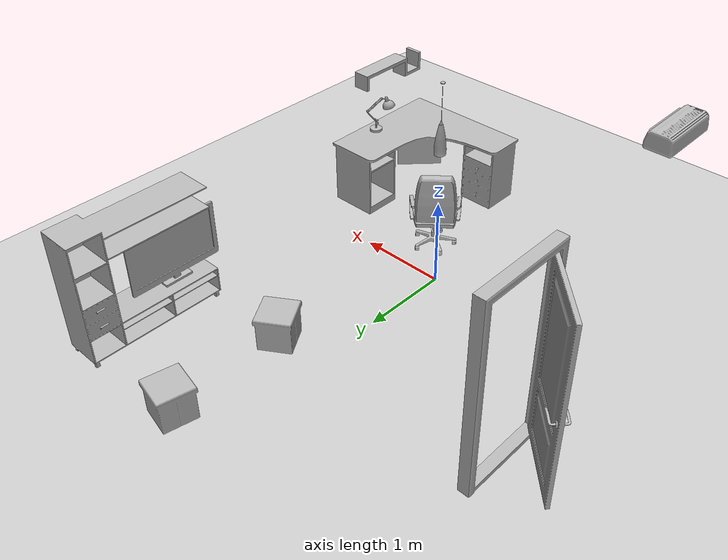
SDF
<sdf version="1.4">
 <world name="default">
  <light name="sun" type="directional">
   <pose>0 0 10 0 -0 0</pose>
   <diffuse>0.8 0.8 0.8 1</diffuse>
   <specular>0.2 0.2 0.2 1</specular>
   <attenuation>
    <range>1000</range>
    <constant>0.9</constant>
    <linear>0.01</linear>
    <quadratic>0.001</quadratic>
   </attenuation>
   <direction>-0.5 0.1 -0.9</direction>
  </light>
  <model name="ground_plane">
   <static>1</static>
   <link name="link">
    <collision name="collision">
     <geometry><plane><normal>0 0 1</normal><size>100 100</size></plane></geometry>
     <surface><friction><ode><mu>100</mu><mu2>50</mu2></ode></friction></surface>
    </collision>
    <visual name="visual">
     <cast_shadows>0</cast_shadows>
     <geometry><plane><normal>0 0 1</normal><size>100 100</size></plane></geometry>
     <material>
      <script><uri>file://media/materials/scripts/gazebo.material</uri><name>Gazebo/Grey</name></script>
     </material>
    </visual>
    <velocity_decay><linear>0</linear><angular>0</angular></velocity_decay>
   </link>
  </model>
  <physics type="ode">
   <max_step_size>0.001</max_step_size>
   <real_time_factor>1</real_time_factor>
   <real_time_update_rate>1000</real_time_update_rate>
   <gravity>0 0 -9.8</gravity>
  </physics>
  <scene><ambient>0.4 0.4 0.4 1</ambient><background>0.7 0.7 0.7 1</background><shadows>1</shadows></scene>
  <spherical_coordinates>
   <surface_model>EARTH_WGS84</surface_model>
   <latitude_deg>0</latitude_deg>
   <longitude_deg>0</longitude_deg>
   <elevation>0</elevation>
   <heading_deg>0</heading_deg>
  </spherical_coordinates>
  <model name="294_0">
   <pose>1.1576 -1.15043 0.01 0 -0 1.5708</pose>
   <static>1</static>
   <link name="link">
    <collision name="collision"><geometry><box><size>1.57989 1.57963 2</size></box></geometry></collision>
    <visual name="visual"><geometry><mesh><uri>model://294/294.dae</uri></mesh></geometry></visual>
    <velocity_decay><linear>0</linear><angular>0</angular></velocity_decay>
   </link>
  </model>
  <model name="106_0">
   <pose>0.453878 -0.512083 0.01 0 -0 2.26683</pose>
   <static>1</static>
   <link name="link">
    <collision name="collision"><geometry><box><size>0.550393 0.596196 2</size></box></geometry></collision>
    <visual name="visual"><geometry><mesh><uri>model://106/106.dae</uri></mesh></geometry></visual>
    <velocity_decay><linear>0</linear><angular>0</angular></velocity_decay>
   </link>
  </model>
  <model name="770_0">
   <pose>-2.046 1.52299 0 0 -0 0</pose>
   <static>1</static>
   <link name="link">
    <collision name="collision"><geometry><box><size>0.73 1.06045 2</size></box></geometry></collision>
    <visual name="visual"><geometry><mesh><uri>model://770/770.dae</uri></mesh></geometry></visual>
    <velocity_decay><linear>0</linear><angular>0</angular></velocity_decay>
   </link>
  </model>
  <model name="493_0">
   <pose>1.83017 -1.21141 1.38 0 -0 3.14159</pose>
   <static>1</static>
   <link name="link">
    <collision name="collision"><geometry><box><size>0.2 0.94 2</size></box></geometry></collision>
    <visual name="visual"><geometry><mesh><uri>model://493/493.dae</uri></mesh></geometry></visual>
    <velocity_decay><linear>0</linear><angular>0</angular></velocity_decay>
   </link>
  </model>
  <model name="570_0">
   <pose>1.7068 2.57645 0.01 0 0 -3.14159</pose>
   <static>1</static>
   <link name="link">
    <collision name="collision"><geometry><box><size>0.439998 1.56 2</size></box></geometry></collision>
    <visual name="visual"><geometry><mesh><uri>model://570/570.dae</uri></mesh></geometry></visual>
    <velocity_decay><linear>0</linear><angular>0</angular></velocity_decay>
   </link>
  </model>
  <model name="113_0">
   <pose>1.68339 2.19015 0.380728 0 0 -3.14159</pose>
   <static>1</static>
   <link name="link">
    <collision name="collision"><geometry><box><size>0.1 1.07995 2</size></box></geometry></collision>
    <visual name="visual"><geometry><mesh><uri>model://113/113.dae</uri></mesh></geometry></visual>
    <velocity_decay><linear>0</linear><angular>0</angular></velocity_decay>
   </link>
  </model>
  <model name="547_0">
   <pose>0.515082 1.84233 0.01 0 -0 0.560973</pose>
   <static>1</static>
   <link name="link">
    <collision name="collision"><geometry><box><size>0.4 0.4 2</size></box></geometry></collision>
    <visual name="visual"><geometry><mesh><uri>model://547/547.dae</uri></mesh></geometry></visual>
    <velocity_decay><linear>0</linear><angular>0</angular></velocity_decay>
   </link>
  </model>
  <model name="547_1">
   <pose>0.48415 3.18768 0.01 0 0 -0.207994</pose>
   <static>1</static>
   <link name="link">
    <collision name="collision"><geometry><box><size>0.4 0.4 2</size></box></geometry></collision>
    <visual name="visual"><geometry><mesh><uri>model://547/547.dae</uri></mesh></geometry></visual>
    <velocity_decay><linear>0</linear><angular>0</angular></velocity_decay>
   </link>
  </model>
  <model name="630_0">
   <pose>-0.306 0.396588 1.91 0 -0 0</pose>
   <static>1</static>
   <link name="link">
    <collision name="collision"><geometry><box><size>0.119556 0.119556 2</size></box></geometry></collision>
    <visual name="visual"><geometry><mesh><uri>model://630/630.dae</uri></mesh></geometry></visual>
    <velocity_decay><linear>0</linear><angular>0</angular></velocity_decay>
   </link>
  </model>
  <model name="419_0">
   <pose>1.74584 -0.983537 0.809976 0 0 -2.35619</pose>
   <static>1</static>
   <link name="link">
    <collision name="collision"><geometry><box><size>0.348578 0.15 2</size></box></geometry></collision>
    <visual name="visual"><geometry><mesh><uri>model://419/419.dae</uri></mesh></geometry></visual>
    <velocity_decay><linear>0</linear><angular>0</angular></velocity_decay>
   </link>
  </model>
  <model name="225_0">
   <pose>-1.87028 -1.18742 2.01 0 -0 0</pose>
   <static>1</static>
   <link name="link">
    <collision name="collision"><geometry><box><size>0.31 0.710003 2</size></box></geometry></collision>
    <visual name="visual"><geometry><mesh><uri>model://225/225.dae</uri></mesh></geometry></visual>
    <velocity_decay><linear>0</linear><angular>0</angular></velocity_decay>
   </link>
  </model>
 </world>
</sdf>
